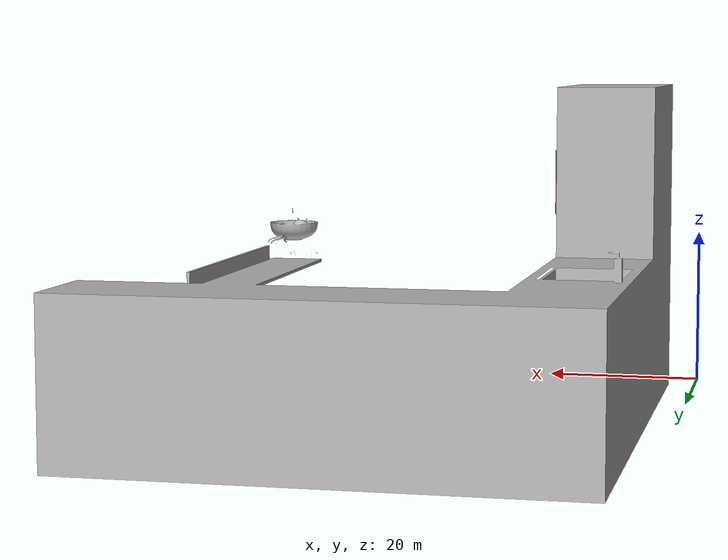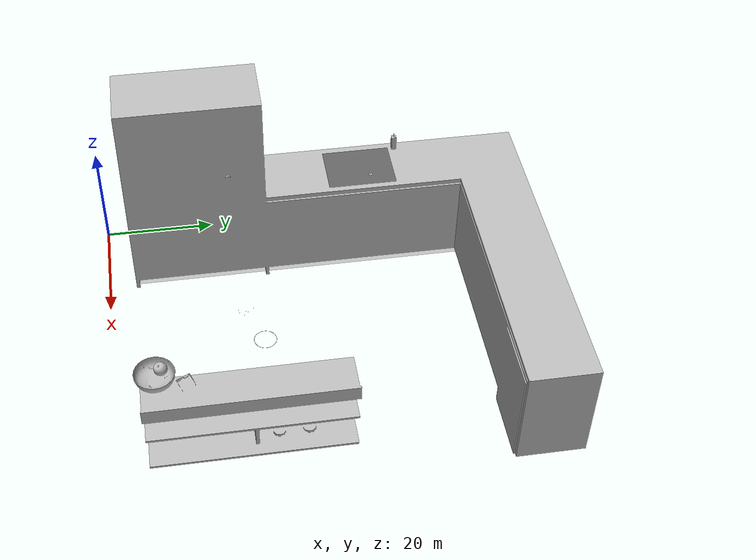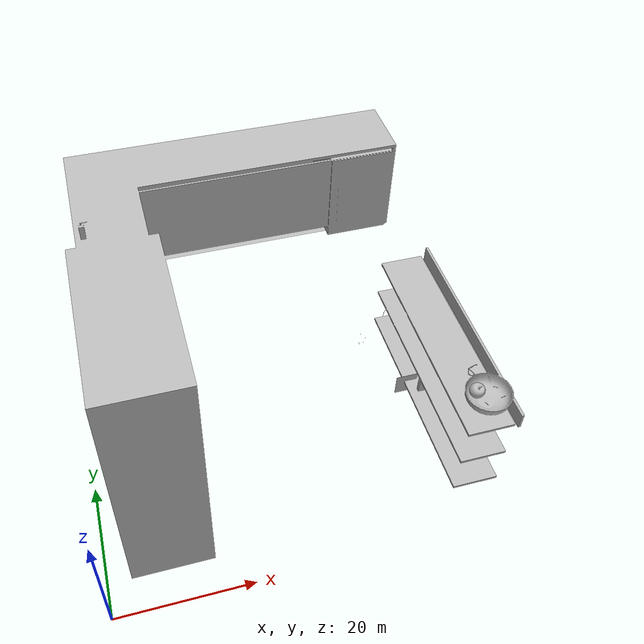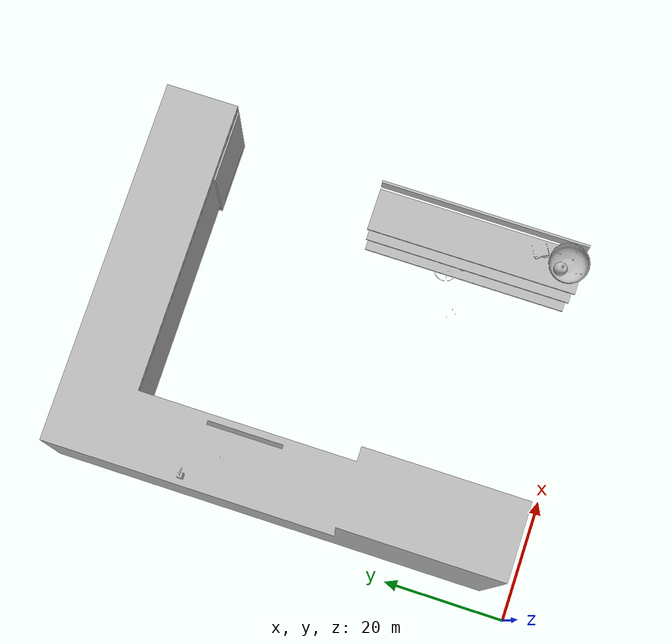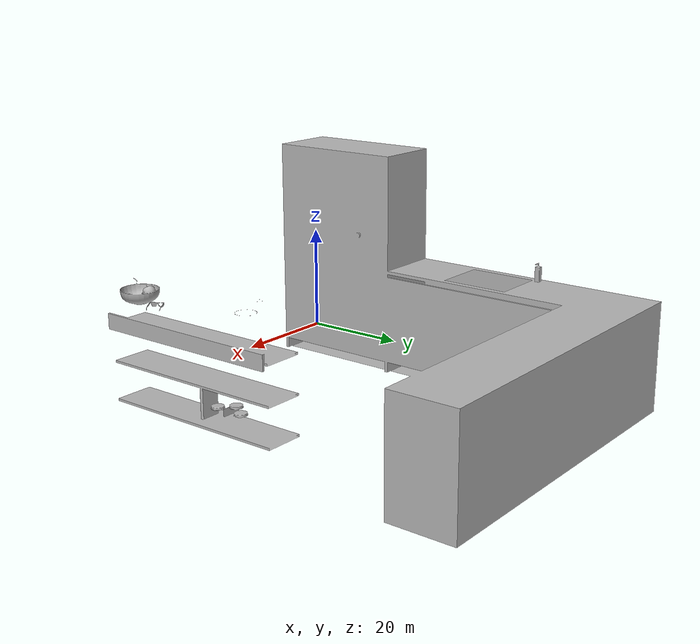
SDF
<?xml version='1.0'?>
<sdf version='1.7'>
  <model name='kitchen_collision_gazebo'>
    <model name='kitchen'>
      <static>0</static>
      <link name='kitchen'>
        <collision name='kitchen_collision'>
          <geometry>
            <mesh>
              <uri>model://Kitchen/meshes/model.dae</uri>
              <scale>0.5 0.5 0.5</scale>
            </mesh>
          </geometry>
        </collision>
        <visual name='visual'>
          <geometry>
            <mesh>
              <uri>model://Kitchen/meshes/model.dae</uri>
              <scale>0.5 0.5 0.5</scale>
            </mesh>
          </geometry>
        </visual>
      </link>
      <pose>0 0 0 0 -0 0</pose>
    </model>
    <static>0</static>
    <allow_auto_disable>1</allow_auto_disable>
  </model>
</sdf>
